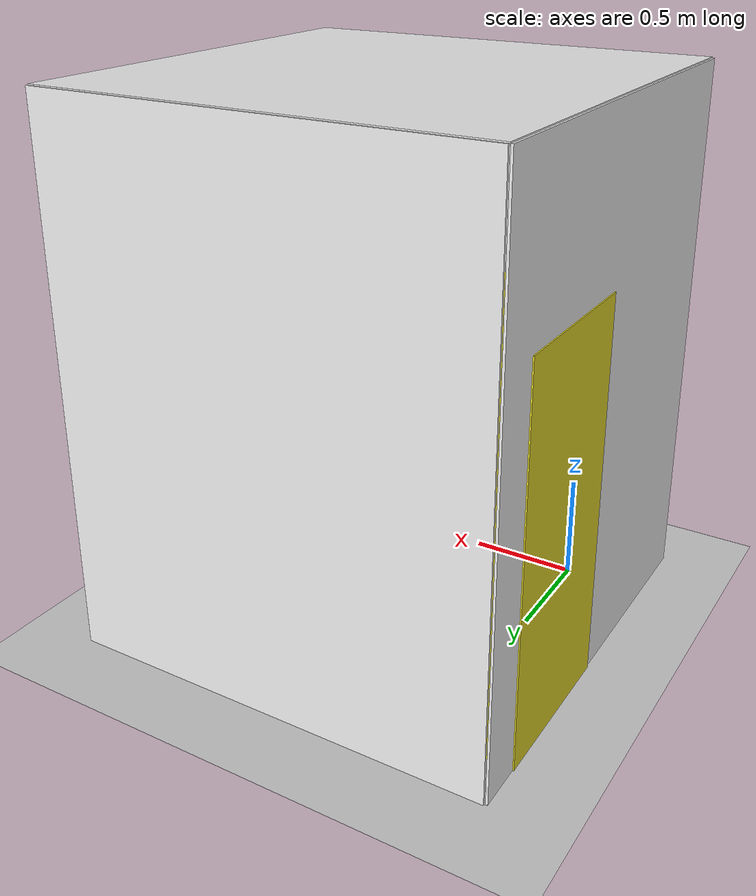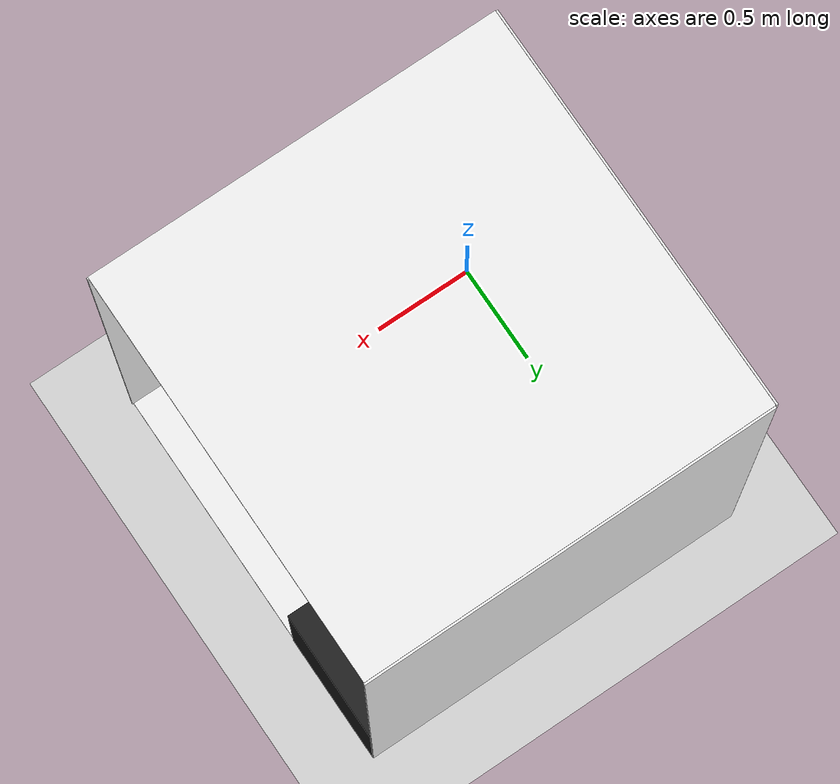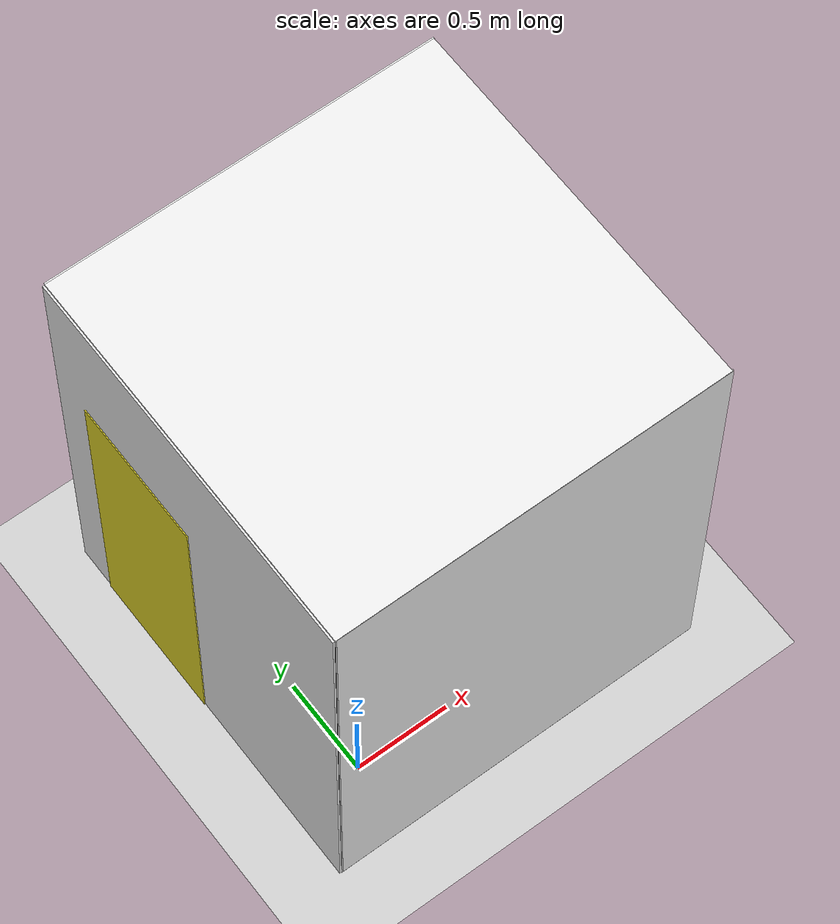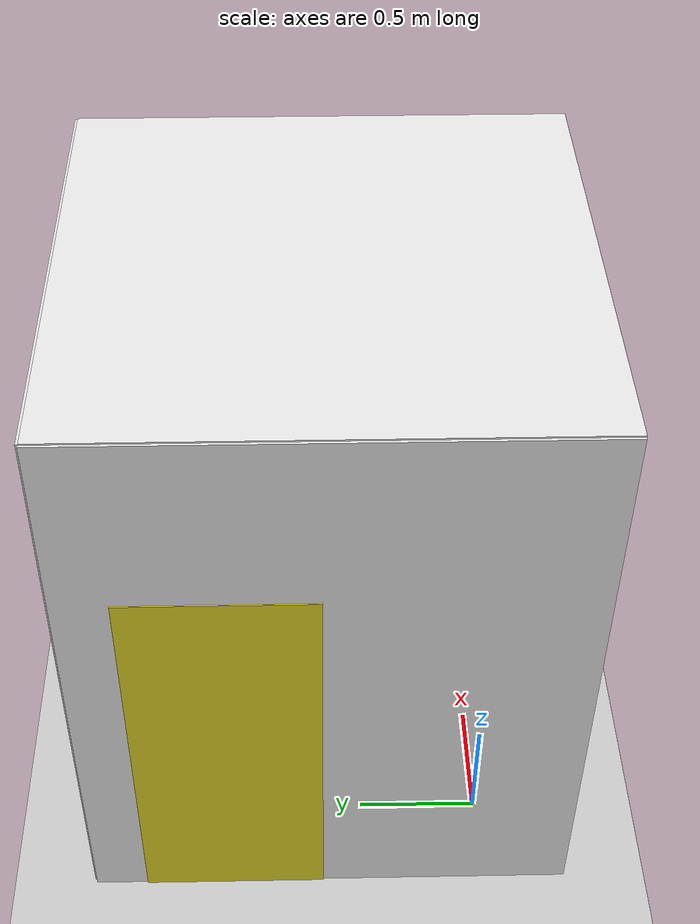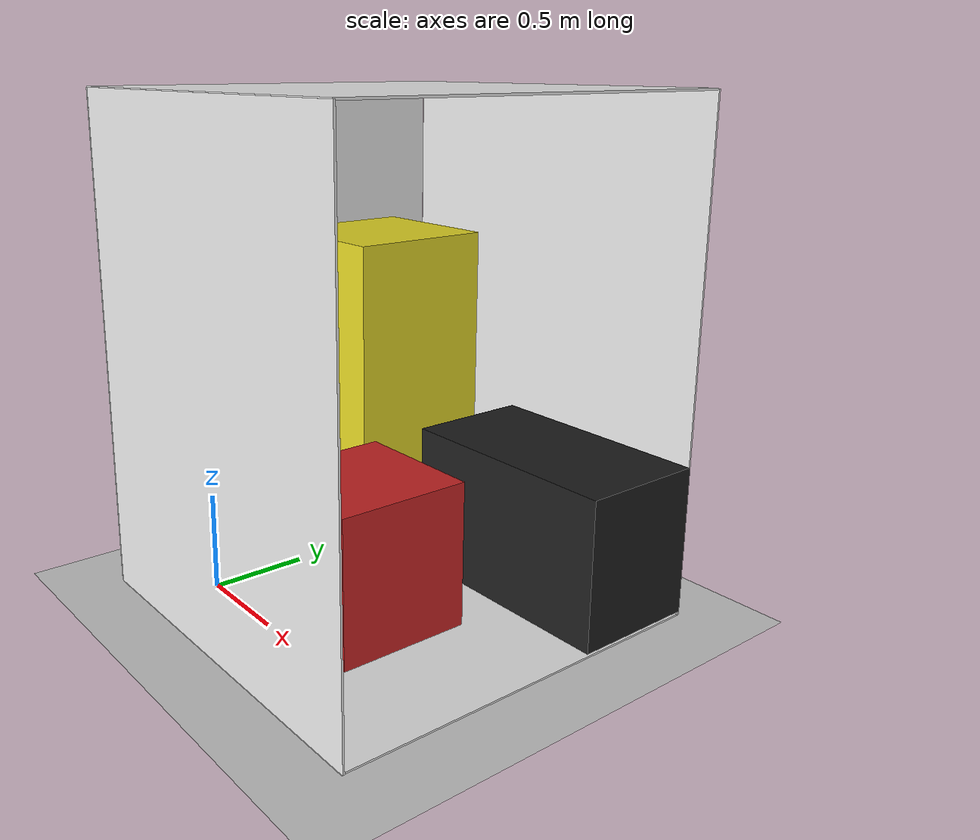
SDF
<sdf version="1.7">
 <world name="default">
  <light name="sun" type="directional">
   <pose>0 0 10 0 -0 0</pose>
   <diffuse>0.8 0.8 0.8 1</diffuse>
   <specular>0.2 0.2 0.2 1</specular>
   <attenuation>
    <range>1000</range>
    <constant>0.9</constant>
    <linear>0.01</linear>
    <quadratic>0.001</quadratic>
   </attenuation>
   <direction>-0.5 0.1 -0.9</direction>
   <spot><inner_angle>0</inner_angle><outer_angle>0</outer_angle><falloff>0</falloff></spot>
  </light>
  <model name="ground_plane">
   <static>1</static>
   <link name="link">
    <collision name="collision">
     <geometry><plane><normal>0 0 1</normal><size>100 100</size></plane></geometry>
     <surface><friction><ode><mu>100</mu><mu2>50</mu2></ode></friction></surface>
    </collision>
    <visual name="visual">
     <cast_shadows>0</cast_shadows>
     <geometry><plane><normal>0 0 1</normal><size>100 100</size></plane></geometry>
     <material>
      <script><uri>file://media/materials/scripts/gazebo.material</uri><name>Gazebo/Grey</name></script>
     </material>
    </visual>
   </link>
  </model>
  <gravity>0 0 -9.8</gravity>
  <magnetic_field>6e-06 2.3e-05 -4.2e-05</magnetic_field>
  <atmosphere type="adiabatic"/>
  <physics type="ode">
   <max_step_size>0.001</max_step_size>
   <real_time_factor>1</real_time_factor>
   <real_time_update_rate>1000</real_time_update_rate>
  </physics>
  <scene><ambient>0.4 0.4 0.4 1</ambient><background>0.7 0.7 0.7 1</background><shadows>1</shadows></scene>
  <spherical_coordinates>
   <surface_model>EARTH_WGS84</surface_model>
   <latitude_deg>0</latitude_deg>
   <longitude_deg>0</longitude_deg>
   <elevation>0</elevation>
   <heading_deg>0</heading_deg>
  </spherical_coordinates>
  <model name="floor_iros">
   <static>1</static>
   <link name="link">
    <collision name="collision_wall"><geometry><box><size>2 0.01 2</size></box></geometry></collision>
    <visual name="visual_wall">
     <geometry><box><size>2 0.01 2</size></box></geometry>
     <material>
      <script><uri>file://media/materials/scripts/gazebo.material</uri><name>Gazebo/White</name></script>
     </material>
    </visual>
   </link>
   <pose>0.64 0.64 1.7e-05 1.5708 -0 0</pose>
  </model>
  <model name="robot_stand_iros">
   <static>1</static>
   <link name="link">
    <inertial>
     <mass>1</mass>
     <inertia><ixx>0.083</ixx><ixy>0</ixy><ixz>0</ixz><iyy>0.083</iyy><iyz>0</iyz><izz>0.083</izz></inertia>
    </inertial>
    <collision name="collision"><geometry><box><size>0.7 0.72 0.775</size></box></geometry></collision>
    <visual name="visual">
     <geometry><box><size>0.7 0.72 0.775</size></box></geometry>
     <material>
      <script><uri>file://media/materials/scripts/gazebo.material</uri><name>Gazebo/Black</name></script>
     </material>
    </visual>
   </link>
   <pose>0 0 0.3975 0 -0 0</pose>
  </model>
  <model name="demonstration_table">
   <static>1</static>
   <link name="link">
    <inertial>
     <mass>1</mass>
     <inertia><ixx>0.083</ixx><ixy>0</ixy><ixz>0</ixz><iyy>0.083</iyy><iyz>0</iyz><izz>0.083</izz></inertia>
    </inertial>
    <collision name="collision"><geometry><box><size>1.2 0.65 0.75</size></box></geometry></collision>
    <visual name="visual">
     <geometry><box><size>1.2 0.65 0.75</size></box></geometry>
     <material>
      <script><uri>file://media/materials/scripts/gazebo.material</uri><name>Gazebo/Black</name></script>
     </material>
    </visual>
   </link>
   <pose>1.04603 1.32056 0.397 0 -0 0</pose>
  </model>
  <model name="robot_demo_table">
   <static>1</static>
   <link name="link">
    <inertial>
     <mass>1</mass>
     <inertia><ixx>0.083</ixx><ixy>0</ixy><ixz>0</ixz><iyy>0.083</iyy><iyz>0</iyz><izz>0.083</izz></inertia>
    </inertial>
    <collision name="collision"><geometry><box><size>0.69 0.69 0.74</size></box></geometry></collision>
    <visual name="visual">
     <geometry><box><size>0.69 0.69 0.74</size></box></geometry>
     <material>
      <script><uri>file://media/materials/scripts/gazebo.material</uri><name>Gazebo/Red</name></script>
     </material>
    </visual>
   </link>
   <pose>0.728646 0.393787 0.37 0 -0 0</pose>
  </model>
  <model name="human">
   <static>1</static>
   <link name="link">
    <collision name="collision_human">
     <geometry><box><size>1.75 0.750001 0.749998</size></box></geometry>
    </collision>
    <visual name="visual_human">
     <geometry><box><size>1.75 0.750001 0.749998</size></box></geometry>
     <material>
      <script><uri>file://media/materials/scripts/gazebo.material</uri><name>Gazebo/Yellow</name></script>
     </material>
    </visual>
   </link>
   <pose>-0.001703 1.05008 0.875 -3.14159 1.57079 -3.14159</pose>
  </model>
  <model name="wall_iros">
   <static>1</static>
   <link name="link">
    <collision name="collision_wall"><geometry><box><size>2 0.01 2.5</size></box></geometry></collision>
    <visual name="visual_wall">
     <geometry><box><size>2 0.01 2.5</size></box></geometry>
     <material>
      <script><uri>file://media/materials/scripts/gazebo.material</uri><name>Gazebo/White</name></script>
     </material>
    </visual>
   </link>
   <pose>0.646351 -0.355521 1.25 0 -0 0</pose>
  </model>
  <model name="wall_iros_0">
   <static>1</static>
   <link name="link">
    <collision name="collision_wall"><geometry><box><size>2 0.01 2.5</size></box></geometry></collision>
    <visual name="visual_wall">
     <geometry><box><size>2 0.01 2.5</size></box></geometry>
     <material>
      <script><uri>file://media/materials/scripts/gazebo.material</uri><name>Gazebo/White</name></script>
     </material>
    </visual>
   </link>
   <pose>0.642938 1.64513 1.25 0 -0 0</pose>
  </model>
  <model name="wall_iros_1">
   <static>1</static>
   <link name="link">
    <collision name="collision_wall"><geometry><box><size>2 0.01 2.5</size></box></geometry></collision>
    <visual name="visual_wall">
     <geometry><box><size>2 0.01 2.5</size></box></geometry>
     <material>
      <script><uri>file://media/materials/scripts/gazebo.material</uri><name>Gazebo/White</name></script>
     </material>
    </visual>
   </link>
   <pose>-0.366147 0.641918 1.25 0 -0 1.5708</pose>
  </model>
  <model name="floor_iros_0">
   <static>1</static>
   <link name="link">
    <collision name="collision_wall"><geometry><box><size>2 0.01 2</size></box></geometry></collision>
    <visual name="visual_wall">
     <geometry><box><size>2 0.01 2</size></box></geometry>
     <material>
      <script><uri>file://media/materials/scripts/gazebo.material</uri><name>Gazebo/White</name></script>
     </material>
    </visual>
   </link>
   <pose>0.64 0.64 2.5 1.5708 -0 0</pose>
  </model>
 </world>
</sdf>
